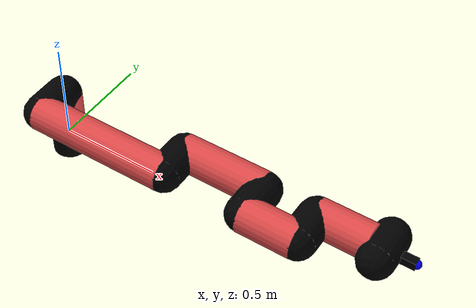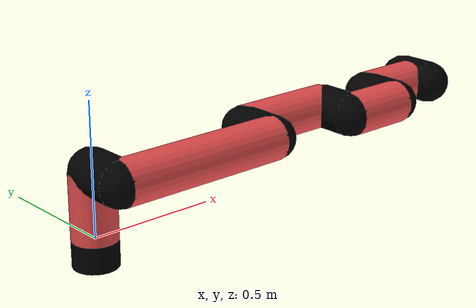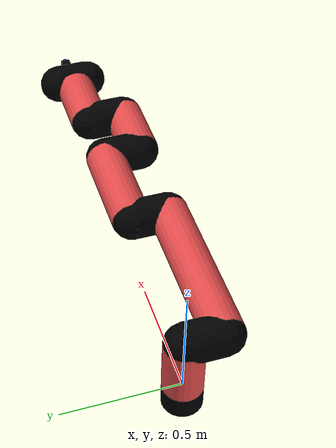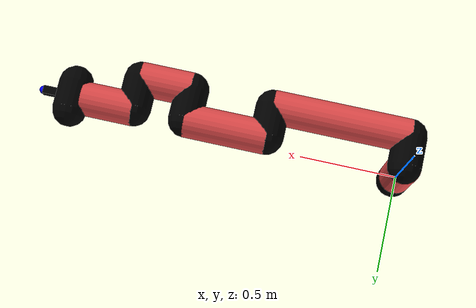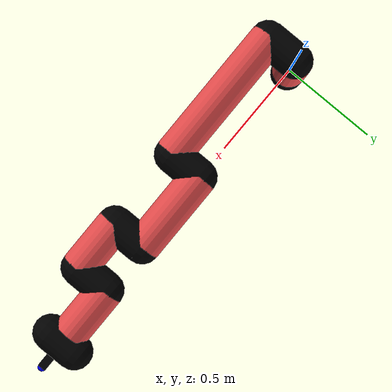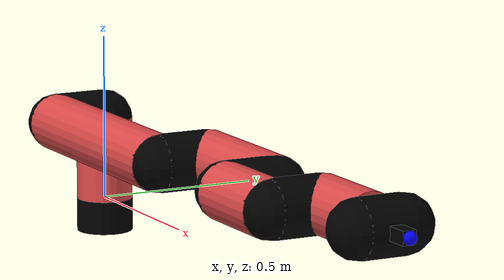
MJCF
<mujoco model="manipulator">
		<compiler angle="degree" coordinate="local" inertiafromgeom="auto" meshdir="meshes/"/>
		<option gravity="0 0 0" integrator="RK4" iterations="30" timestep="0.01"/>

		<default>
		<joint armature="1" limited="true" stiffness="10" damping="15" frictionloss="5.0"/>
		<geom conaffinity="1" condim="3" contype="1" friction=".5 .1 .1" margin="0.002"/>
		<motor ctrllimited="true"/>
		<position ctrllimited="true"/>
		</default>

		<asset>
		<texture builtin="gradient" height="100" rgb1="1.0 1.0 1.0" rgb2="1.0 1.0 1.0" type="skybox" width="100"/>
		<texture builtin="flat" height="32" name="arm_tex" rgb1="0.9 0.3 0.3" type="2d" width="32"/>
		<texture builtin="flat" height="32" name="gripper_tex" rgb1="0.0 0.0 0.0" type="cube" width="32"/>

		<material name="arm_mat" shininess="0.1" specular="0.1" texture="arm_tex"/>
		<material name="gripper_mat" shininess="1" specular="1" texture="gripper_tex"/>
		</asset>

		<worldbody>
		<light cutoff="45" diffuse=".8 .8 .8" dir="0 0.16 -1" directional="false" name="light" pos="0 -2.0 8.0" specular="0.3 0.3 0.3"/>

		<body name="base_link" pos="0 0 -0.1">
		<geom fromto="0 0 0 0 0 0.1" material="arm_mat" name="base_link" rgba="0.0 0.0 0.0 1" size="0.085" type="cylinder"/>
		</body>

		<body name="l1" pos="0 0 0">
<geom fromto="0 0 0 0 0 0.25" material="arm_mat" name="l1" rgba="0.9 0.3 0.3 1" size="0.085" type="cylinder"/>
<geom fromto="0 0 0.25 0 -0.16 0.25" material="arm_mat" name="l1_ex" rgba="0.0 0.0 0.0 1" size="0.085" type="capsule"/>
<joint axis="0 0 1" name="j1" pos="0 0 0" range="-90 90" damping="23.91" frictionloss="6.65"/>

<body name="l2" pos="0 -0.16 0.25">
<geom fromto="0 0 0 0.69 0 0" material="arm_mat" name="l2" rgba="0.9 0.3 0.3 1" size="0.085" type="cylinder"/>
<geom fromto="0.69 0 0 0.69 0.16 0" material="arm_mat" name="l2_ex" rgba="0.0 0.0 0.0 1" size="0.085" type="capsule"/>
<joint axis="0.0 1.0 0.0" name="j2" pos="0 0 0" range="-90 60" damping="28.75" frictionloss="11.22"/>

<body name="l3" pos="0.69 0.16 0">
<geom fromto="0 0 0 0.41 0 0" material="arm_mat" name="l3" rgba="0.9 0.3 0.3 1" size="0.085" type="cylinder"/>
<geom fromto="0.41 0 0 0.41 -0.16 0" material="arm_mat" name="l3_ex" rgba="0.0 0.0 0.0 1" size="0.085" type="capsule"/>
<joint axis="0.0 1.0 0.0" name="j3" pos="0 0 0" range="-30 60" damping="27.37" frictionloss="8.45"/>

<body name="l4" pos="0.41 -0.16 0">
<geom fromto="0 0 0 0.26 0 0" material="arm_mat" name="l4" rgba="0.9 0.3 0.3 1" size="0.085" type="cylinder"/>
<geom fromto="0.26 0 0 0.26 0.16 0" material="arm_mat" name="l4_ex" rgba="0.0 0.0 0.0 1" size="0.085" type="capsule"/>
<joint axis="0.0 1.0 0.0" name="j4" pos="0 0 0" range="-30 60" damping="38.33" frictionloss="13.15"/>

<body name="l5" pos="0.26 0.16 0">
<geom fromto="0 0 0 0.26 0 0" material="arm_mat" name="l5" rgba="0.9 0.3 0.3 1" size="0.085" type="cylinder"/>
<joint axis="0.0 1.0 0.0" name="j5" pos="0 0 0" range="-30 60" damping="31.06" frictionloss="10.63"/>

<body name="gripper" pos="0.26 0 0">
<geom fromto="0.05 -0.07 0 0.05 0.07 0" material="gripper_mat" name="gripper" rgba="0.0 0.0 0.0 1" size="0.085" type="capsule"/><joint axis="1 0 0" name="j6" pos="0 0 0" range="-90 90" damping="15" frictionloss="5.0"/><body name="finger" pos="0.1 0 0">
<geom fromto="0 0.0 0 0.1 0.0 0" material="gripper_mat" name="finger" rgba="0.0 0.0 0.0 1" size="0.020 0.06 0.06" type="box"/>
</body>
<site name="current" pos="0.2 0. 0.0" rgba="0. 0. 1.0 1" size="0.02" type="sphere"/>
</body>
</body>
</body>
</body>
</body>
</body>
</worldbody>
<actuator>
<motor ctrllimited="true" ctrlrange="-1.0 1.0" joint="j1" gear="65.97"/>
<motor ctrllimited="true" ctrlrange="-1.0 1.0" joint="j2" gear="89.18"/>
<motor ctrllimited="true" ctrlrange="-1.0 1.0" joint="j3" gear="68.94"/>
<motor ctrllimited="true" ctrlrange="-1.0 1.0" joint="j4" gear="67.38"/>
<motor ctrllimited="true" ctrlrange="-1.0 1.0" joint="j5" gear="86.14"/>
<motor ctrllimited="true" ctrlrange="-1.0 1.0" joint="j6" gear="80"/>
</actuator>
</mujoco>
